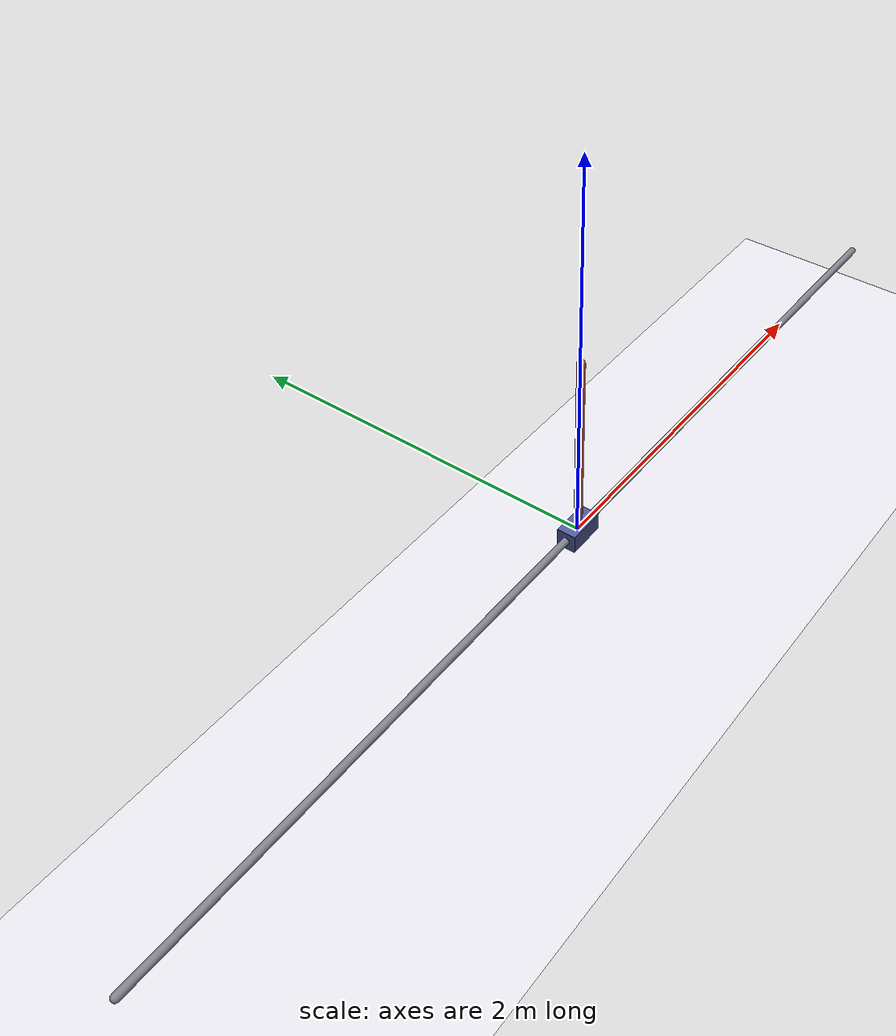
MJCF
<mujoco model="cartpole">
  <option timestep="0.01" integrator="implicitfast"/>

  <visual>
    <headlight ambient="0.45 0.45 0.45" diffuse="0.6 0.6 0.6" specular="0.1 0.1 0.1"/>
    <global offwidth="640" offheight="480"/>
  </visual>

  <asset>
    <texture name="grid" type="2d" builtin="checker" rgb1="0.92 0.92 0.94" rgb2="0.83 0.83 0.87"
             width="256" height="256"/>
    <material name="floor_mat" texture="grid" texrepeat="10 4" reflectance="0"/>
  </asset>

  <worldbody>
    <!-- side camera looking along +y at the x-z plane the cartpole lives in -->
    <camera name="side" pos="0 -4.0 0.6" xyaxes="1 0 0 0 0 1"/>

    <!-- visual-only floor and rail (nothing collides) -->
    <geom name="floor" type="plane" pos="0 0 -0.6" size="3.5 1.0 0.1" material="floor_mat"
          contype="0" conaffinity="0"/>
    <geom name="rail" type="capsule" fromto="-2.9 0 0 2.9 0 0" size="0.02"
          rgba="0.5 0.5 0.55 1" contype="0" conaffinity="0"/>

    <!-- cart on the rail: one slide joint, driven by the motor below -->
    <body name="cart" pos="0 0 0">
      <joint name="slider" type="slide" axis="1 0 0" range="-2.9 2.9"/>
      <geom name="cart_geom" type="box" size="0.1 0.05 0.05" rgba="0.30 0.35 0.60 1"
            mass="1.0" contype="0" conaffinity="0"/>

      <!-- pole hinged at the cart center; qpos 0 = straight up (+z) -->
      <body name="pole" pos="0 0 0">
        <joint name="hinge" type="hinge" axis="0 1 0"/>
        <geom name="pole_geom" type="capsule" fromto="0 0 0 0 0 1.0" size="0.02"
              rgba="0.80 0.35 0.30 1" mass="0.1" contype="0" conaffinity="0"/>
      </body>
    </body>
  </worldbody>

  <actuator>
    <!-- single force actuator on the cart: ctrl in [-1, 1] => +-10 N -->
    <motor name="slide_force" joint="slider" gear="10" ctrlrange="-1 1"/>
  </actuator>
</mujoco>
